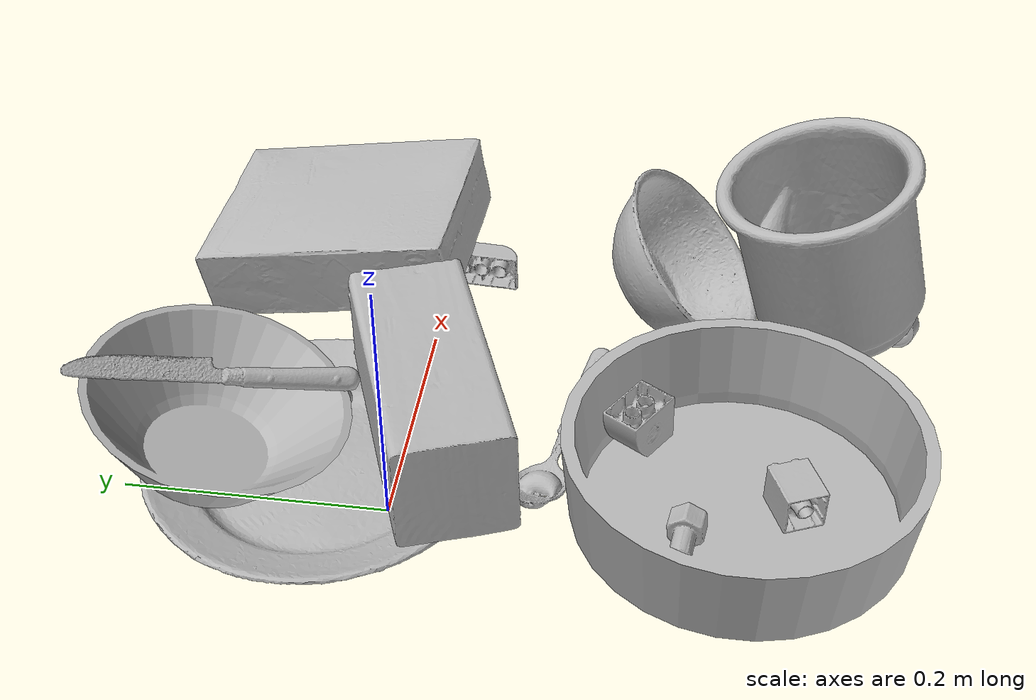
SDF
<sdf version="1.4">
  <world name="default">
    <light name="light1" type="point">
      <pose>0 0 1 0 0 0</pose>
      <diffuse>3 3 3 1</diffuse>
      <specular>3 3 3 1</specular>
    </light>
    <light name="light2" type="point">
      <pose>0 0.5 2 0 0 0</pose>
      <diffuse>1 1 1 1</diffuse>
      <specular>1 1 1 1</specular>
    </light>
    <light name="light3" type="point">
      <pose>0 0.5 2 0 0 0</pose>
      <diffuse>3 3 3 1</diffuse>
      <specular>3 3 3 1</specular>
    </light>
    <scene>
      <ambient>0.7 0.7 0.7</ambient>
    </scene>
    <model name="plate1">
      <link name="link_plate1">
        <collision name="default">
          <geometry>
            <mesh>
              <uri>model://pan_tefal/collision_meshes/collision.obj</uri>
              <scale>1.0 1.0 1.0</scale>
            </mesh>
          </geometry>
          <surface>
            <friction>
              <ode>
                <mu>0.5</mu>
                <mu2>0.5</mu2>
              </ode>
            </friction>
          <contact>
        <ode>
            <max_vel>0</max_vel>
            <min_depth>0.0001</min_depth>
            <kp>1e8</kp>
        </ode>
    </contact></surface>
        </collision>
        <visual name="default">
          <geometry>
            <mesh>
              <uri>model://pan_tefal/visual_meshes/visual.dae</uri>
              <scale>1.0 1.0 1.0</scale>
            </mesh>
          </geometry>
        </visual>
        <inertial>
          <mass>1.083925485610962</mass>
          <pose>-0.00018002053548116237 3.279013617429882e-05 -0.00851493701338768 0.000819031166138591 -0.00033013701589440335 -0.33186472787035126</pose>
          <inertia>
            <ixx>0.0074822875</ixx>
            <iyy>0.0075305253</iyy>
            <izz>0.013773448</izz>
            <ixy>0</ixy>
            <ixz>0</ixz>
            <iyz>0</iyz>
          </inertia>
        </inertial>
      </link>
      <pose>0.0331403911113739 -0.25476711988449097 0.03804999589920044 2.7765455970747685e-08 1.141279784639417e-08 -1.148531537052238</pose>
    </model>
    <model name="plate2">
      <link name="link_plate2">
        <collision name="default">
          <geometry>
            <mesh>
              <uri>model://plate/collision_meshes/collision.obj</uri>
              <scale>1.0 1.0 1.0</scale>
            </mesh>
          </geometry>
          <surface>
            <friction>
              <ode>
                <mu>0.5</mu>
                <mu2>0.5</mu2>
              </ode>
            </friction>
          <contact>
        <ode>
            <max_vel>0</max_vel>
            <min_depth>0.0001</min_depth>
            <kp>1e8</kp>
        </ode>
    </contact></surface>
        </collision>
        <visual name="default">
          <geometry>
            <mesh>
              <uri>model://plate/visual_meshes/visual.dae</uri>
              <scale>1.0 1.0 1.0</scale>
            </mesh>
          </geometry>
        </visual>
        <inertial>
          <mass>0.26740342378616333</mass>
          <pose>-0.00060446304269135 0.00027825793949887156 -0.0010561994276940823 0.0022187903743134635 -0.0032254779444460427 0.4526079808055429</pose>
          <inertia>
            <ixx>0.0012509191</ixx>
            <iyy>0.0012389544</iyy>
            <izz>0.00244661</izz>
            <ixy>0</ixy>
            <ixz>0</ixz>
            <iyz>0</iyz>
          </inertia>
        </inertial>
      </link>
      <pose>0.03092437982559204 0.05755853280425072 0.013819035142660141 0.00040262029527054767 -0.0011522404659882303 1.2403546675461439</pose>
    </model>
    <model name="bowl1">
      <link name="link_bowl1">
        <collision name="default">
          <geometry>
            <mesh>
              <uri>model://bowl/collision_meshes/collision.obj</uri>
              <scale>1.0 1.0 1.0</scale>
            </mesh>
          </geometry>
          <surface>
            <friction>
              <ode>
                <mu>0.5</mu>
                <mu2>0.5</mu2>
              </ode>
            </friction>
          <contact>
        <ode>
            <max_vel>0</max_vel>
            <min_depth>0.0001</min_depth>
            <kp>1e8</kp>
        </ode>
    </contact></surface>
        </collision>
        <visual name="default">
          <geometry>
            <mesh>
              <uri>model://bowl/visual_meshes/visual.dae</uri>
              <scale>1.0 1.0 1.0</scale>
            </mesh>
          </geometry>
        </visual>
        <inertial>
          <mass>0.062040042132139206</mass>
          <pose>0.00020445157133508474 -0.001030211104080081 -0.0008042659028433263 -0.01576411046463803 0.014546752923574583 0.7140383763158871</pose>
          <inertia>
            <ixx>0.00014251085</ixx>
            <iyy>0.0001393266</iyy>
            <izz>0.00023975229</izz>
            <ixy>0</ixy>
            <ixz>0</ixz>
            <iyz>0</iyz>
          </inertia>
        </inertial>
      </link>
      <pose>0.25083690881729126 -0.18997536599636078 0.05276484414935112 0.7776397447299805 -0.3818695092810782 0.31662614009889306</pose>
    </model>
    <model name="bowl2">
      <link name="link_bowl2">
        <collision name="default">
          <geometry>
            <mesh>
              <uri>model://bowl_a/collision_meshes/collision.obj</uri>
              <scale>1.0 1.0 1.0</scale>
            </mesh>
          </geometry>
          <surface>
            <friction>
              <ode>
                <mu>0.5</mu>
                <mu2>0.5</mu2>
              </ode>
            </friction>
          <contact>
        <ode>
            <max_vel>0</max_vel>
            <min_depth>0.0001</min_depth>
            <kp>1e8</kp>
        </ode>
    </contact></surface>
        </collision>
        <visual name="default">
          <geometry>
            <mesh>
              <uri>model://bowl_a/visual_meshes/visual.dae</uri>
              <scale>1.0 1.0 1.0</scale>
            </mesh>
          </geometry>
        </visual>
        <inertial>
          <mass>0.2882154881954193</mass>
          <pose>0.00027867534663528204 4.731079752673395e-05 -0.0013765293406322598 -0.0009805311525578244 -0.0010938248781945461 -0.19124031319294812</pose>
          <inertia>
            <ixx>0.00082056265</ixx>
            <iyy>0.0008256004</iyy>
            <izz>0.001459402</izz>
            <ixy>0</ixy>
            <ixz>0</ixz>
            <iyz>0</iyz>
          </inertia>
        </inertial>
      </link>
      <pose>0.023351065814495087 0.13358446955680847 0.048687711358070374 -0.14822070462628306 -0.24265116301393364 2.1929839097379284</pose>
    </model>
    <model name="silverware1">
      <link name="link_silverware1">
        <collision name="default">
          <geometry>
            <mesh>
              <uri>model://fork/collision_meshes/collision.obj</uri>
              <scale>1.0 1.0 1.0</scale>
            </mesh>
          </geometry>
          <surface>
            <friction>
              <ode>
                <mu>0.5</mu>
                <mu2>0.5</mu2>
              </ode>
            </friction>
          <contact>
        <ode>
            <max_vel>0</max_vel>
            <min_depth>0.0001</min_depth>
            <kp>1e8</kp>
        </ode>
    </contact></surface>
        </collision>
        <visual name="default">
          <geometry>
            <mesh>
              <uri>model://fork/visual_meshes/visual.dae</uri>
              <scale>1.0 1.0 1.0</scale>
            </mesh>
          </geometry>
        </visual>
        <inertial>
          <mass>0.01398836076259613</mass>
          <pose>-0.02957003563642502 0.00046588244731538 0.0003218861238565296 -0.013550934691899108 -0.010977833142804767 0.01445389655901604</pose>
          <inertia>
            <ixx>4.903713e-07</ixx>
            <iyy>3.6519592e-05</iyy>
            <izz>3.673893e-05</izz>
            <ixy>0</ixy>
            <ixz>0</ixz>
            <iyz>0</iyz>
          </inertia>
        </inertial>
      </link>
      <pose>0.0930553525686264 0.14607802033424377 0.02762136235833168 -0.8254990716936563 -0.17759430843475604 1.7027500646499225</pose>
    </model>
    <model name="box1">
      <link name="link_box1">
        <collision name="default">
          <geometry>
            <mesh>
              <uri>model://cracker_box/collision_meshes/collision.obj</uri>
              <scale>1.0 1.0 1.0</scale>
            </mesh>
          </geometry>
          <surface>
            <friction>
              <ode>
                <mu>0.5</mu>
                <mu2>0.5</mu2>
              </ode>
            </friction>
          <contact>
        <ode>
            <max_vel>0</max_vel>
            <min_depth>0.0001</min_depth>
            <kp>1e8</kp>
        </ode>
    </contact></surface>
        </collision>
        <visual name="default">
          <geometry>
            <mesh>
              <uri>model://cracker_box/visual_meshes/visual.dae</uri>
              <scale>1.0 1.0 1.0</scale>
            </mesh>
          </geometry>
        </visual>
        <inertial>
          <mass>3.3038947582244873</mass>
          <pose>0.0009464139584451914 0.00025434247800149024 -0.0017029535956680775 -0.00031620753779881404 -0.011106489600569465 0.002546794535826719</pose>
          <inertia>
            <ixx>0.008403633</ixx>
            <iyy>0.013876048</iyy>
            <izz>0.019802397</izz>
            <ixy>0</ixy>
            <ixz>0</ixz>
            <iyz>0</iyz>
          </inertia>
        </inertial>
      </link>
      <pose>0.27695927023887634 0.08777939528226852 0.05115065351128578 3.1148516488322997 0.16562957831799316 1.5182616588024833</pose>
    </model>
    <model name="box2">
      <link name="link_box2">
        <collision name="default">
          <geometry>
            <mesh>
              <uri>model://wood_block/collision_meshes/collision.obj</uri>
              <scale>1.0 1.0 1.0</scale>
            </mesh>
          </geometry>
          <surface>
            <friction>
              <ode>
                <mu>0.5</mu>
                <mu2>0.5</mu2>
              </ode>
            </friction>
          <contact>
        <ode>
            <max_vel>0</max_vel>
            <min_depth>0.0001</min_depth>
            <kp>1e8</kp>
        </ode>
    </contact></surface>
        </collision>
        <visual name="default">
          <geometry>
            <mesh>
              <uri>model://wood_block/visual_meshes/visual.dae</uri>
              <scale>1.0 1.0 1.0</scale>
            </mesh>
          </geometry>
        </visual>
        <inertial>
          <mass>1.8317598104476929</mass>
          <pose>-5.813315510749817e-06 -0.000570809468626976 0.0002640858292579651 -0.05220774405774941 -0.005192695034541599 -0.006861378043904631</pose>
          <inertia>
            <ixx>0.0024511719</ixx>
            <iyy>0.0077432534</iyy>
            <izz>0.007714289</izz>
            <ixy>0</ixy>
            <ixz>0</ixz>
            <iyz>0</iyz>
          </inertia>
        </inertial>
      </link>
      <pose>0.050062667578458786 -0.025222159922122955 0.07166682928800583 3.1334484337014716 0.0018420643652343226 0.34951035339271325</pose>
    </model>
    <model name="cup1">
      <link name="link_cup1">
        <collision name="default">
          <geometry>
            <mesh>
              <uri>model://f_cups/collision_meshes/collision.obj</uri>
              <scale>2.0 2.0 2.0</scale>
            </mesh>
          </geometry>
          <surface>
            <friction>
              <ode>
                <mu>0.5</mu>
                <mu2>0.5</mu2>
              </ode>
            </friction>
          <contact>
        <ode>
            <max_vel>0</max_vel>
            <min_depth>0.0001</min_depth>
            <kp>1e8</kp>
        </ode>
    </contact></surface>
        </collision>
        <visual name="default">
          <geometry>
            <mesh>
              <uri>model://f_cups/visual_meshes/visual.dae</uri>
              <scale>2.0 2.0 2.0</scale>
            </mesh>
          </geometry>
        </visual>
        <inertial>
          <mass>0.8281989693641663</mass>
          <pose>-0.006342937704175711 -0.0012480166042223573 -0.007311076857149601 0.7862278170542254 -0.2607923358756499 -0.18237381375543787</pose>
          <inertia>
            <ixx>0.003114117</ixx>
            <iyy>0.0032667436</iyy>
            <izz>0.0034007723</izz>
            <ixy>0</ixy>
            <ixz>0</ixz>
            <iyz>0</iyz>
          </inertia>
        </inertial>
      </link>
      <pose>0.2539617717266083 -0.3141747713088989 0.08558715879917145 0.10384432049112152 -0.2435571325668255 -1.808488709589246</pose>
    </model>
    <model name="silverware2">
      <link name="link_silverware2">
        <collision name="default">
          <geometry>
            <mesh>
              <uri>model://knife/collision_meshes/collision.obj</uri>
              <scale>1.0 1.0 1.0</scale>
            </mesh>
          </geometry>
          <surface>
            <friction>
              <ode>
                <mu>0.5</mu>
                <mu2>0.5</mu2>
              </ode>
            </friction>
          <contact>
        <ode>
            <max_vel>0</max_vel>
            <min_depth>0.0001</min_depth>
            <kp>1e8</kp>
        </ode>
    </contact></surface>
        </collision>
        <visual name="default">
          <geometry>
            <mesh>
              <uri>model://knife/visual_meshes/visual.dae</uri>
              <scale>1.0 1.0 1.0</scale>
            </mesh>
          </geometry>
        </visual>
        <inertial>
          <mass>0.033610157668590546</mass>
          <pose>-0.02378525771200657 0.0015275131445378065 5.0620201363926753e-05 0.07305356746503441 0.01724842347870745 -0.0074098216508425</pose>
          <inertia>
            <ixx>9.539925e-07</ixx>
            <iyy>0.00012912478</iyy>
            <izz>0.00012943202</izz>
            <ixy>0</ixy>
            <ixz>0</ixz>
            <iyz>0</iyz>
          </inertia>
        </inertial>
      </link>
      <pose>0.037107452750205994 0.1301596611738205 0.0878826156258583 -0.9926064013987692 -0.2643501825028691 1.952903031290606</pose>
    </model>
    <model name="silverware3">
      <link name="link_silverware3">
        <collision name="default">
          <geometry>
            <mesh>
              <uri>model://spoon/collision_meshes/collision.obj</uri>
              <scale>1.0 1.0 1.0</scale>
            </mesh>
          </geometry>
          <surface>
            <friction>
              <ode>
                <mu>0.5</mu>
                <mu2>0.5</mu2>
              </ode>
            </friction>
          <contact>
        <ode>
            <max_vel>0</max_vel>
            <min_depth>0.0001</min_depth>
            <kp>1e8</kp>
        </ode>
    </contact></surface>
        </collision>
        <visual name="default">
          <geometry>
            <mesh>
              <uri>model://spoon/visual_meshes/visual.dae</uri>
              <scale>1.0 1.0 1.0</scale>
            </mesh>
          </geometry>
        </visual>
        <inertial>
          <mass>0.03036251850426197</mass>
          <pose>-0.005526314955204725 -0.0016034168656915426 -0.0007271655485965312 0.035217258575681115 -0.03906584346489495 0.006150616147242728</pose>
          <inertia>
            <ixx>1.6888126e-06</ixx>
            <iyy>0.00011552838</iyy>
            <izz>0.00011636122</izz>
            <ixy>0</ixy>
            <ixz>0</ixz>
            <iyz>0</iyz>
          </inertia>
        </inertial>
      </link>
      <pose>0.09495449811220169 -0.12198755145072937 0.00838526338338852 0.006728769720371729 0.026893002289441272 2.9259766116436183</pose>
    </model>
    <model name="toy1">
      <link name="link_toy1">
        <collision name="default">
          <geometry>
            <mesh>
              <uri>model://d_lego_duplo/collision_meshes/collision.obj</uri>
              <scale>1.0 1.0 1.0</scale>
            </mesh>
          </geometry>
          <surface>
            <friction>
              <ode>
                <mu>0.5</mu>
                <mu2>0.5</mu2>
              </ode>
            </friction>
          <contact>
        <ode>
            <max_vel>0</max_vel>
            <min_depth>0.0001</min_depth>
            <kp>1e8</kp>
        </ode>
    </contact></surface>
        </collision>
        <visual name="default">
          <geometry>
            <mesh>
              <uri>model://d_lego_duplo/visual_meshes/visual.dae</uri>
              <scale>1.0 1.0 1.0</scale>
            </mesh>
          </geometry>
        </visual>
        <inertial>
          <mass>0.05888136848807335</mass>
          <pose>0.00283056334592402 0.00016366125782951713 0.0008589810458943248 0.0801088994423302 -0.3835518637869403 0.0010296847698221781</pose>
          <inertia>
            <ixx>1.1398561e-05</ixx>
            <iyy>1.6177655e-05</iyy>
            <izz>1.5601077e-05</izz>
            <ixy>0</ixy>
            <ixz>0</ixz>
            <iyz>0</iyz>
          </inertia>
        </inertial>
      </link>
      <pose>0.08446957170963287 -0.17543645203113556 0.029204485937952995 3.1319663619202736 -0.020044508063507736 -0.5778818610230358</pose>
    </model>
    <model name="toy2">
      <link name="link_toy2">
        <collision name="default">
          <geometry>
            <mesh>
              <uri>model://d_toy_airplane/collision_meshes/collision.obj</uri>
              <scale>1.0 1.0 1.0</scale>
            </mesh>
          </geometry>
          <surface>
            <friction>
              <ode>
                <mu>0.5</mu>
                <mu2>0.5</mu2>
              </ode>
            </friction>
          <contact>
        <ode>
            <max_vel>0</max_vel>
            <min_depth>0.0001</min_depth>
            <kp>1e8</kp>
        </ode>
    </contact></surface>
        </collision>
        <visual name="default">
          <geometry>
            <mesh>
              <uri>model://d_toy_airplane/visual_meshes/visual.dae</uri>
              <scale>1.0 1.0 1.0</scale>
            </mesh>
          </geometry>
        </visual>
        <inertial>
          <mass>0.019283337518572807</mass>
          <pose>9.410297934664413e-05 -5.809335198136978e-05 -0.011728096753358841 0.00026677547083937895 0.00467899750463603 0.5194224971352938</pose>
          <inertia>
            <ixx>5.7807692e-06</ixx>
            <iyy>5.78513e-06</iyy>
            <izz>1.7452522e-06</izz>
            <ixy>0</ixy>
            <ixz>0</ixz>
            <iyz>0</iyz>
          </inertia>
        </inertial>
      </link>
      <pose>0.2690203785896301 -0.38620060682296753 0.011610409244894981 1.9140558944467208 -0.9584357308668038 0.9234325656257724</pose>
    </model>
    <model name="toy3">
      <link name="link_toy3">
        <collision name="default">
          <geometry>
            <mesh>
              <uri>model://b_lego_duplo/collision_meshes/collision.obj</uri>
              <scale>1.0 1.0 1.0</scale>
            </mesh>
          </geometry>
          <surface>
            <friction>
              <ode>
                <mu>0.5</mu>
                <mu2>0.5</mu2>
              </ode>
            </friction>
          <contact>
        <ode>
            <max_vel>0</max_vel>
            <min_depth>0.0001</min_depth>
            <kp>1e8</kp>
        </ode>
    </contact></surface>
        </collision>
        <visual name="default">
          <geometry>
            <mesh>
              <uri>model://b_lego_duplo/visual_meshes/visual.dae</uri>
              <scale>1.0 1.0 1.0</scale>
            </mesh>
          </geometry>
        </visual>
        <inertial>
          <mass>0.03460631147027016</mass>
          <pose>-0.00011053022171836346 -9.15238524612505e-06 0.0019294291269034147 -0.037494934713503944 -0.026353982766830427 0.45190023703794546</pose>
          <inertia>
            <ixx>7.082442e-06</ixx>
            <iyy>7.1300533e-06</iyy>
            <izz>6.310225e-06</izz>
            <ixy>0</ixy>
            <ixz>0</ixz>
            <iyz>0</iyz>
          </inertia>
        </inertial>
      </link>
      <pose>0.03370829299092293 -0.2924332320690155 0.02367950789630413 0.15699663065821148 1.5625789845076499 0.5639573595868428</pose>
    </model>
    <model name="toy4">
      <link name="link_toy4">
        <collision name="default">
          <geometry>
            <mesh>
              <uri>model://c_toy_airplane/collision_meshes/collision.obj</uri>
              <scale>1.0 1.0 1.0</scale>
            </mesh>
          </geometry>
          <surface>
            <friction>
              <ode>
                <mu>0.5</mu>
                <mu2>0.5</mu2>
              </ode>
            </friction>
          <contact>
        <ode>
            <max_vel>0</max_vel>
            <min_depth>0.0001</min_depth>
            <kp>1e8</kp>
        </ode>
    </contact></surface>
        </collision>
        <visual name="default">
          <geometry>
            <mesh>
              <uri>model://c_toy_airplane/visual_meshes/visual.dae</uri>
              <scale>1.0 1.0 1.0</scale>
            </mesh>
          </geometry>
        </visual>
        <inertial>
          <mass>0.03008922003209591</mass>
          <pose>-0.00023024248366709799 -4.429292062013701e-07 -0.006080532446503639 -0.006192764609865116 -0.016797726061543002 0.7654936540566961</pose>
          <inertia>
            <ixx>1.3816358e-05</ixx>
            <iyy>1.3777365e-05</iyy>
            <izz>3.2438072e-06</izz>
            <ixy>0</ixy>
            <ixz>0</ixz>
            <iyz>0</iyz>
          </inertia>
        </inertial>
      </link>
      <pose>-0.03075825609266758 -0.21484093368053436 0.022488154470920563 -1.6013533259617179 0.7031079994906971 -1.7133788233952065</pose>
    </model>
    <model name="toy5">
      <link name="link_toy5">
        <collision name="default">
          <geometry>
            <mesh>
              <uri>model://a_lego_duplo/collision_meshes/collision.obj</uri>
              <scale>1.0 1.0 1.0</scale>
            </mesh>
          </geometry>
          <surface>
            <friction>
              <ode>
                <mu>0.5</mu>
                <mu2>0.5</mu2>
              </ode>
            </friction>
          <contact>
        <ode>
            <max_vel>0</max_vel>
            <min_depth>0.0001</min_depth>
            <kp>1e8</kp>
        </ode>
    </contact></surface>
        </collision>
        <visual name="default">
          <geometry>
            <mesh>
              <uri>model://a_lego_duplo/visual_meshes/visual.dae</uri>
              <scale>1.0 1.0 1.0</scale>
            </mesh>
          </geometry>
        </visual>
        <inertial>
          <mass>0.02472195029258728</mass>
          <pose>-0.00011337580508552492 0.00018517558055464178 0.0003692609316203743 -0.014116968053030856 -0.00012565531185804749 6.140757465531037e-05</pose>
          <inertia>
            <ixx>3.1695524e-06</ixx>
            <iyy>7.100487e-06</iyy>
            <izz>8.795534e-06</izz>
            <ixy>0</ixy>
            <ixz>0</ixz>
            <iyz>0</iyz>
          </inertia>
        </inertial>
      </link>
      <pose>0.2879442572593689 -0.026380790397524834 0.01638566516339779 1.5698038223375026 0.008090416665373877 1.4801072148628167</pose>
    </model>
  <physics type="ode">
      <max_contacts>50</max_contacts>
      <ode>
        <solver>
          <type>quick</type>
          <iters>75</iters>
        </solver>
        <constraints>
          <contact_max_correcting_vel>0</contact_max_correcting_vel>
          <contact_surface_layer>0</contact_surface_layer>
        </constraints>
      </ode>
    </physics></world>
</sdf>
